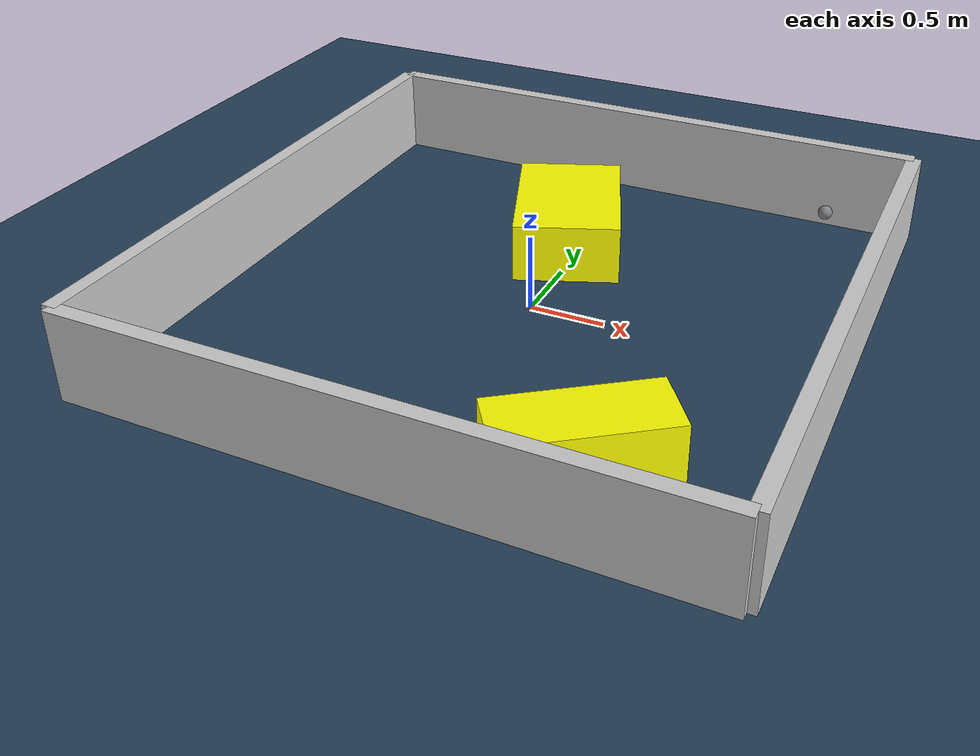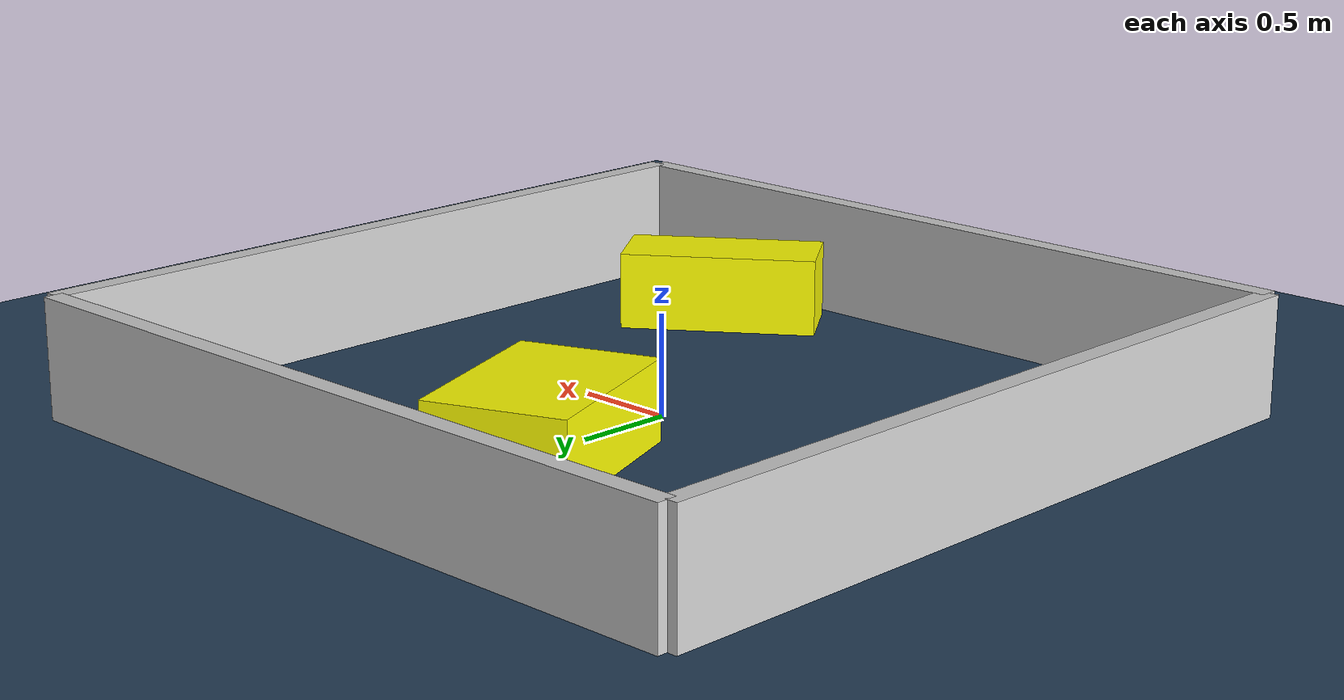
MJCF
<?xml version="1.0" ?>
<mujoco model="generated_environment">
  <option timestep="0.01" integrator="RK4" cone="elliptic"/>
  <default>
    <geom density="1"/>
  </default>
  <asset>
    <texture builtin="gradient" height="3072" rgb1="0.3 0.5 0.7" rgb2="0 0 0" type="skybox" width="512"/>
    <texture builtin="checker" height="300" mark="edge" markrgb="0.8 0.8 0.8" name="groundplane" rgb1="0.2 0.3 0.4" rgb2="0.1 0.2 0.3" type="2d" width="300"/>
    <material name="groundplane" reflectance="0.2" texrepeat="5 5" texture="groundplane" texuniform="true"/>
    <material name="robot" rgba="0.0 1.0 0.0 1"/>
  </asset>
  <worldbody>
    <light dir="0 0 -1" directional="true" pos="0 0 1.5"/>
    <geom condim="4" friction="1.0 0.005 0.001" material="groundplane" name="floor" size="0 0 0.05" type="plane"/>
    <body name="walls">
      <geom name="wall_1" condim="4" pos="-2.0 0.0 0.3" rgba="0.800000011920929 0.800000011920929 0.800000011920929 1.0" size="0.05 2.0 0.3" type="box"/>
      <geom name="wall_2" condim="4" pos="2.0 0.0 0.3" rgba="0.800000011920929 0.800000011920929 0.800000011920929 1.0" size="0.05 2.0 0.3" type="box"/>
      <geom name="wall_3" condim="4" pos="0.0 -2.0 0.3" rgba="0.800000011920929 0.800000011920929 0.800000011920929 1.0" size="2.0 0.05 0.3" type="box"/>
      <geom name="wall_4" condim="4" pos="0.0 2.0 0.3" rgba="0.800000011920929 0.800000011920929 0.800000011920929 1.0" size="2.0 0.05 0.3" type="box"/>
    </body>
    <body name="robot">
      <joint name="joint_x" type="slide" pos="0 0 0" axis="1 0 0"/>
      <joint name="joint_y" type="slide" pos="0 0 0" axis="0 1 0"/>
      <geom name="robot" type="sphere" pos="1.4892337518939658 1.7311110629010784 0.2" size="0.05" mass="5." friction="1.0 0.005 0.0001" condim="4"/>
      <site name="sensor_ball"/>
    </body>
    <body name="obstacle_1_movable">
      <geom name="obstacle_1_movable" condim="4" pos="-0.10620863176675632 0.8592315154561252 0.2" euler="0 0 201.30801985593445" friction="1.0 0.005 0.001" rgba="1 1 0 1" size="0.35423351526888736 0.49992286943129344 0.2" type="box" mass="0.1"/>
      <joint type="free"/>
    </body>
    <body name="obstacle_2_movable">
      <geom name="obstacle_2_movable" condim="4" pos="0.9374687778694857 -1.406199952354689 0.2" euler="0 0 215.61554683485383" friction="1.0 0.005 0.001" rgba="1 1 0 1" size="0.5105714404856219 0.2161617648408264 0.2" type="box" mass="0.1"/>
      <joint type="free"/>
    </body>
  </worldbody>
  <actuator>
    <motor name="actuator_x" joint="joint_x" gear="1" ctrlrange="-1 1"/>
    <motor name="actuator_y" joint="joint_y" gear="1" ctrlrange="-1 1"/>
  </actuator>
</mujoco>
